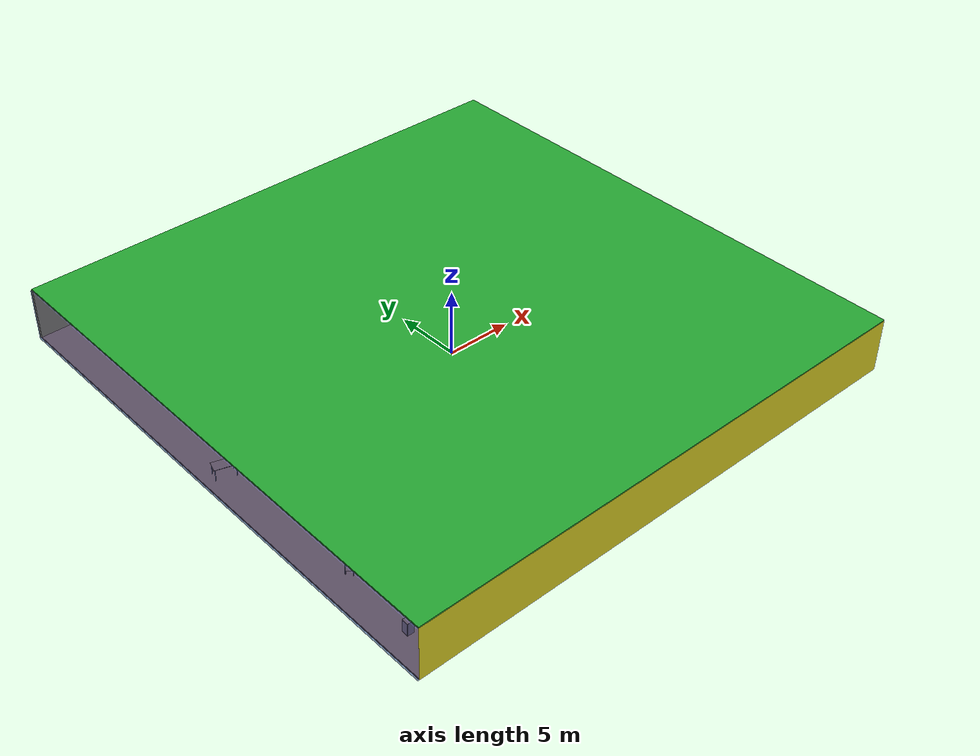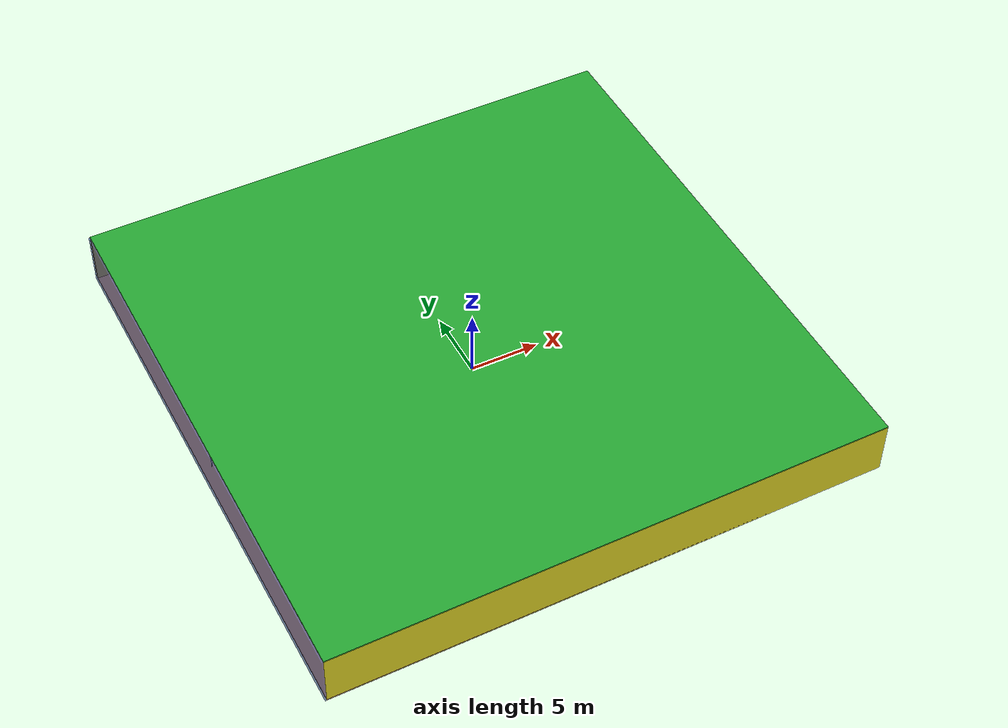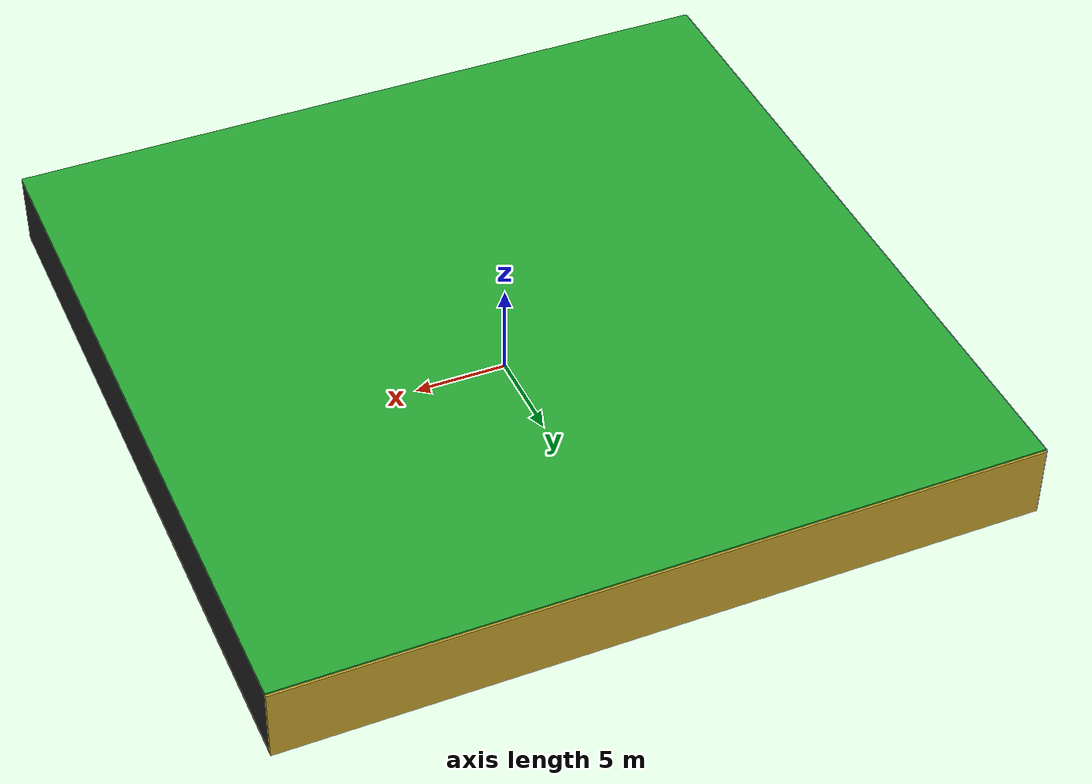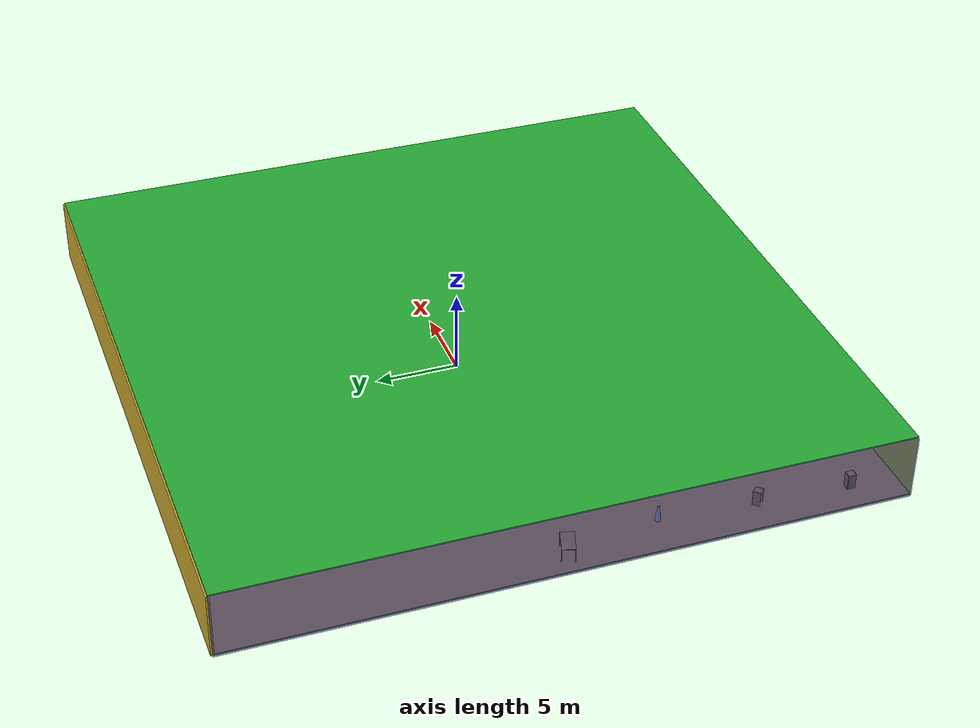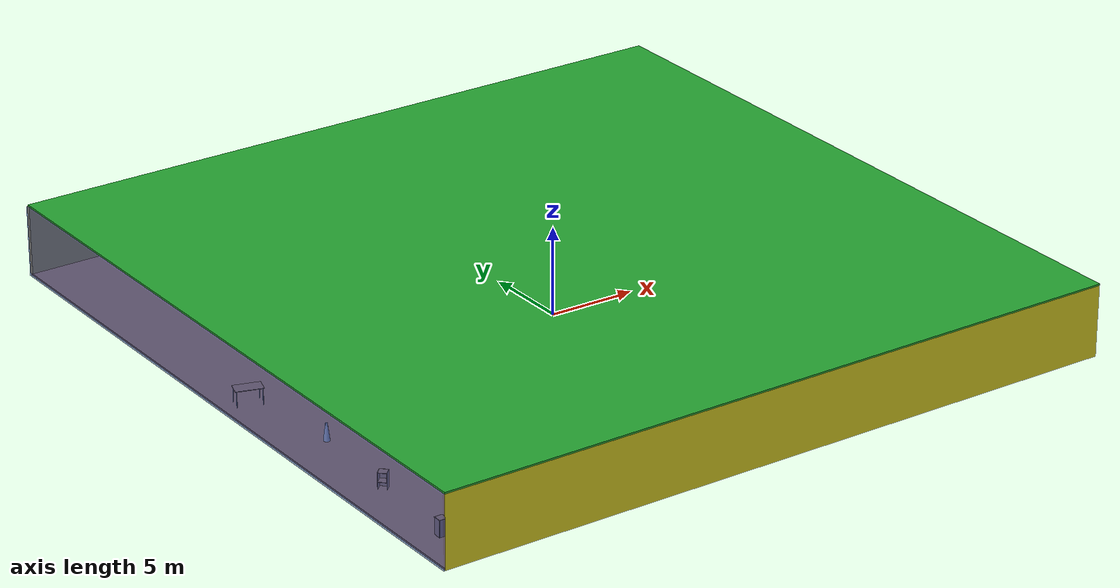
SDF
<sdf version="1.4">
 <world name="default">
  <physics type="ode">
   <max_step_size>0.001</max_step_size>
   <real_time_factor>1</real_time_factor>
   <real_time_update_rate>1000</real_time_update_rate>
   <gravity>0 0 -9.8</gravity>
  </physics>
  <scene><ambient>0.4 0.4 0.4 1</ambient><background>0.7 0.7 0.7 1</background><shadows>1</shadows></scene>
  <model name="Surrounding">
   <static>1</static>
   <link name="Ceiling">
    <collision name="Ceiling_Collision"><geometry><box><size>40 40 0.1</size></box></geometry></collision>
    <visual name="Ceiling_Visual">
     <geometry><box><size>40 40 0.1</size></box></geometry>
     <material>
      <script><uri>file://media/materials/scripts/gazebo.material</uri><name>Gazebo/Green</name></script>
     </material>
    </visual>
    <pose>0 0 4.05 0 0 0</pose>
   </link>
   <link name="Wall_South">
    <collision name="Wall_South_Collision">
     <geometry><box><size>40 0 4</size></box></geometry>
     <pose>0 0 2 0 -0 0</pose>
    </collision>
    <visual name="Wall_South_Visual">
     <pose>0 0 2 0 -0 0</pose>
     <geometry><box><size>40 0 4</size></box></geometry>
     <material>
      <script><uri>file://media/materials/scripts/gazebo.material</uri><name>Gazebo/YellowGlow</name></script>
     </material>
    </visual>
    <velocity_decay><linear>0</linear><angular>0</angular></velocity_decay>
    <pose>0 -20 0 0 -0 0</pose>
   </link>
   <link name="Wall_East">
    <collision name="Wall_21_Collision">
     <geometry><box><size>40 0 4</size></box></geometry>
     <pose>0 0 2 0 -0 0</pose>
    </collision>
    <visual name="Wall_21_Visual">
     <pose>0 0 2 0 -0 0</pose>
     <geometry><box><size>40 0 4</size></box></geometry>
     <material>
      <script><uri>file://media/materials/scripts/gazebo.material</uri><name>Gazebo/Black</name></script>
     </material>
    </visual>
    <velocity_decay><linear>0</linear><angular>0</angular></velocity_decay>
    <pose>20 0 0 0 -0 1.5708</pose>
   </link>
   <link name="Wall_North">
    <collision name="Wall_22_Collision">
     <geometry><box><size>40 0.2 4</size></box></geometry>
     <pose>0 0 2 0 -0 0</pose>
    </collision>
    <visual name="Wall_22_Visual">
     <pose>0 0 2 0 -0 0</pose>
     <geometry><box><size>40 0.2 4</size></box></geometry>
     <material>
      <script><uri>file://media/materials/scripts/gazebo.material</uri><name>Gazebo/Gold</name></script>
     </material>
    </visual>
    <velocity_decay><linear>0</linear><angular>0</angular></velocity_decay>
    <pose>0 20 0 0 -0 0</pose>
   </link>
   <link name="Wall_West">
    <collision name="Wall_23_Collision">
     <geometry><box><size>40 0.2 4</size></box></geometry>
     <pose>0 0 2 0 -0 0</pose>
    </collision>
    <visual name="Wall_23_Visual">
     <pose>0 0 2 0 -0 0</pose>
     <geometry><box><size>40 0.2 4</size></box></geometry>
     <material>
      <script><uri>file://media/materials/scripts/gazebo.material</uri><name>Gazebo/BlueTransparent</name></script>
     </material>
    </visual>
    <velocity_decay><linear>0</linear><angular>0</angular></velocity_decay>
    <pose>-20 0 0 0 0 -1.5708</pose>
   </link>
   <link name="Ground_link">
    <collision name="collision">
     <pose>0 0 .05 0 -0 0</pose>
     <geometry><box><size>40 40 0.1</size></box></geometry>
    </collision>
    <visual name="visual">
     <pose>0 0 .05 0 -0 0</pose>
     <geometry><box><size>40 40 0.1</size></box></geometry>
     <material>
      <script><uri>file://media/materials/scripts/gazebo.material</uri><name>Gazebo/WoodPallet</name></script>
     </material>
    </visual>
   </link>
   <static>1</static>
  </model>
  <spherical_coordinates>
   <surface_model>EARTH_WGS84</surface_model>
   <latitude_deg>0</latitude_deg>
   <longitude_deg>0</longitude_deg>
   <elevation>0</elevation>
   <heading_deg>0</heading_deg>
  </spherical_coordinates>
  <light name="lightball_0" type="diffuse">
   <diffuse>0.8 0.8 0.8 1</diffuse>
   <specular>0.2 0.2 0.2 1</specular>
   <attenuation>
    <range>100</range>
    <constant>0.7</constant>
    <linear>0.01</linear>
    <quadratic>0.001</quadratic>
   </attenuation>
   <direction>-0.5 0.1 -0.9</direction>
   <pose>-18.7052450067 -3.81508475378 2.51884599764 0 0 0</pose>
  </light>
  <light name="lightball_1" type="diffuse">
   <diffuse>0.8 0.8 0.8 1</diffuse>
   <specular>0.2 0.2 0.2 1</specular>
   <attenuation>
    <range>100</range>
    <constant>0.7</constant>
    <linear>0.01</linear>
    <quadratic>0.001</quadratic>
   </attenuation>
   <direction>-0.5 0.1 -0.9</direction>
   <pose>1.02097936259 -1.59358966553 0.808236473244 0 0 0</pose>
  </light>
  <light name="lightball_2" type="diffuse">
   <diffuse>0.8 0.8 0.8 1</diffuse>
   <specular>0.2 0.2 0.2 1</specular>
   <attenuation>
    <range>100</range>
    <constant>0.7</constant>
    <linear>0.01</linear>
    <quadratic>0.001</quadratic>
   </attenuation>
   <direction>-0.5 0.1 -0.9</direction>
   <pose>-13.4781375858 -6.66738241321 0.814625841236 0 0 0</pose>
  </light>
  <light name="lightball_3" type="diffuse">
   <diffuse>0.8 0.8 0.8 1</diffuse>
   <specular>0.2 0.2 0.2 1</specular>
   <attenuation>
    <range>100</range>
    <constant>0.7</constant>
    <linear>0.01</linear>
    <quadratic>0.001</quadratic>
   </attenuation>
   <direction>-0.5 0.1 -0.9</direction>
   <pose>-16.5935856653 -18.5657744378 2.03871000967 0 0 0</pose>
  </light>
  <light name="lightball_4" type="diffuse">
   <diffuse>0.8 0.8 0.8 1</diffuse>
   <specular>0.2 0.2 0.2 1</specular>
   <attenuation>
    <range>100</range>
    <constant>0.7</constant>
    <linear>0.01</linear>
    <quadratic>0.001</quadratic>
   </attenuation>
   <direction>-0.5 0.1 -0.9</direction>
   <pose>-6.71135238291 17.606329139 1.24895958908 0 0 0</pose>
  </light>
  <light name="lightball_5" type="diffuse">
   <diffuse>0.8 0.8 0.8 1</diffuse>
   <specular>0.2 0.2 0.2 1</specular>
   <attenuation>
    <range>100</range>
    <constant>0.7</constant>
    <linear>0.01</linear>
    <quadratic>0.001</quadratic>
   </attenuation>
   <direction>-0.5 0.1 -0.9</direction>
   <pose>-12.5333573843 1.22000375591 3.4760151334 0 0 0</pose>
  </light>
  <light name="lightball_6" type="diffuse">
   <diffuse>0.8 0.8 0.8 1</diffuse>
   <specular>0.2 0.2 0.2 1</specular>
   <attenuation>
    <range>100</range>
    <constant>0.7</constant>
    <linear>0.01</linear>
    <quadratic>0.001</quadratic>
   </attenuation>
   <direction>-0.5 0.1 -0.9</direction>
   <pose>15.4095882363 5.4469683955 2.06607301813 0 0 0</pose>
  </light>
  <light name="lightball_7" type="diffuse">
   <diffuse>0.8 0.8 0.8 1</diffuse>
   <specular>0.2 0.2 0.2 1</specular>
   <attenuation>
    <range>100</range>
    <constant>0.7</constant>
    <linear>0.01</linear>
    <quadratic>0.001</quadratic>
   </attenuation>
   <direction>-0.5 0.1 -0.9</direction>
   <pose>-10.241483196 9.94348161199 3.04343235878 0 0 0</pose>
  </light>
  <light name="lightball_8" type="diffuse">
   <diffuse>0.8 0.8 0.8 1</diffuse>
   <specular>0.2 0.2 0.2 1</specular>
   <attenuation>
    <range>100</range>
    <constant>0.7</constant>
    <linear>0.01</linear>
    <quadratic>0.001</quadratic>
   </attenuation>
   <direction>-0.5 0.1 -0.9</direction>
   <pose>-5.56862537667 4.8971006308 3.87472033542 0 0 0</pose>
  </light>
  <light name="lightball_9" type="diffuse">
   <diffuse>0.8 0.8 0.8 1</diffuse>
   <specular>0.2 0.2 0.2 1</specular>
   <attenuation>
    <range>100</range>
    <constant>0.7</constant>
    <linear>0.01</linear>
    <quadratic>0.001</quadratic>
   </attenuation>
   <direction>-0.5 0.1 -0.9</direction>
   <pose>11.2550977333 9.81795132963 2.85686029503 0 0 0</pose>
  </light>
  <include><uri>model://cabinet</uri><pose>-18.3113003323 -17.086158844 0 0 0 3.10477169357</pose></include>
  <include><uri>model://cabinet</uri><pose>-17.9853122617 -11.5399580199 0 0 0 0.781471046816</pose></include>
  <include>
   <uri>model://construction_cone</uri>
   <pose>-17.5364273264 -5.70282526782 0 0 0 2.15513341311</pose>
  </include>
  <include><uri>model://table</uri><pose>-18.559696563 0.0417429826056 0 0 0 2.84160872535</pose></include>
  <include><uri>model://table</uri><pose>-14.2505345373 -7.39328378857 0 0 0 1.45863549594</pose></include>
  <include><uri>model://cabinet</uri><pose>-14.6570603997 7.15730820273 0 0 0 0.395323680185</pose></include>
  <include><uri>model://cabinet</uri><pose>-12.0615761624 -9.2133528447 0 0 0 1.05024968028</pose></include>
  <include>
   <uri>model://textured_shapes</uri>
   <pose>-10.9541331024 10.4829542036 0 0 0 0.588024765376</pose>
  </include>
  <include><uri>model://table</uri><pose>-8.81054145702 -8.06036269915 0 0 0 0.227246258125</pose></include>
  <include><uri>model://cabinet</uri><pose>-9.29088817399 -2.88297189554 0 0 0 0.591880509264</pose></include>
  <include><uri>model://cabinet</uri><pose>-8.93442134575 0.0050759282923 0 0 0 1.39176791612</pose></include>
  <include><uri>model://cabinet</uri><pose>-5.93779059339 -17.258032745 0 0 0 1.61745072514</pose></include>
  <include><uri>model://cabinet</uri><pose>-6.60956049224 0.715457475863 0 0 0 1.95881209471</pose></include>
  <include><uri>model://cabinet</uri><pose>-4.50142847632 2.7061719769 0 0 0 0.527787535104</pose></include>
  <include>
   <uri>model://robocup_3Dsim_goal</uri>
   <pose>-1.68835408437 7.20116448361 0 0 0 2.38186623908</pose>
  </include>
  <include><uri>model://cabinet</uri><pose>0.34368845877 -15.3722436826 0 0 0 0.821505035454</pose></include>
  <include>
   <uri>model://construction_cone</uri>
   <pose>-0.0210990405115 -1.50291548691 0 0 0 0.962922805881</pose>
  </include>
  <include>
   <uri>model://textured_shapes</uri>
   <pose>-0.482773692253 1.51194588305 0 0 0 2.81891343295</pose>
  </include>
  <include><uri>model://cabinet</uri><pose>4.58619857028 -16.5145068931 0 0 0 1.03529073335</pose></include>
  <include>
   <uri>model://construction_cone</uri>
   <pose>4.60040841637 -15.4072263898 0 0 0 0.918172976973</pose>
  </include>
  <include><uri>model://table</uri><pose>2.69234178675 10.6644592901 0 0 0 0.00820051764724</pose></include>
  <include>
   <uri>model://construction_cone</uri>
   <pose>8.31264495367 17.909013046 0 0 0 0.109971966546</pose>
  </include>
  <include><uri>model://cabinet</uri><pose>13.5160362783 7.66438349358 0 0 0 0.53528421257</pose></include>
  <include><uri>model://cabinet</uri><pose>16.0959036199 -5.52240341404 0 0 0 1.72666877739</pose></include>
  <include><uri>model://cabinet</uri><pose>14.6407639663 4.09069498448 0 0 0 1.46258321976</pose></include>
 </world>
</sdf>

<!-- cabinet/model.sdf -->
<sdf version="1.5">
  <model name="cabinet">
    <static>true</static>
    <link name="cabinet_bottom_plate">
      <inertial>
        <pose>0 0 -1 0 0 0</pose>
        <inertia>
          <ixx>2.050000</ixx>
          <ixy>0</ixy>
          <ixz>0</ixz>
          <iyy>2.050000</iyy>
          <iyz>0</iyz>
          <izz>2.050000</izz>
        </inertia>
        <mass>25.000000</mass>
      </inertial>
      <collision name="cabinet_bottom_plate_geom">
        <pose>0 0 0.010000 0 0 0</pose>
        <geometry>
          <box>
            <size>0.450000 0.450000 0.020000</size>
          </box>
        </geometry>
      </collision>
      <visual name="cabinet_bottom_plate_geom_visual">
        <pose>0 0 0.010000 0 0 0</pose>
        <geometry>
          <box>
            <size>0.450000 0.450000 0.020000</size>
          </box>
        </geometry>
        <material>
          <script>
            <uri>model://media/materials/scripts/gazebo.material</uri>
            <name>Gazebo/Wood</name>
          </script>
        </material>
      </visual>
      <collision name="cabinet_bottom_plate_geom_cabinet_back_plate">
        <pose>0.235000 0 0.510000 0 0 0</pose>
        <geometry>
          <box>
            <size>0.020000 0.450000 1.020000</size>
          </box>
        </geometry>
      </collision>
      <visual name="cabinet_bottom_plate_geom_cabinet_back_plate_visual">
        <pose>0.235000 0 0.510000 0 0 0</pose>
        <geometry>
          <box>
            <size>0.020000 0.450000 1.020000</size>
          </box>
        </geometry>
        <material>
          <script>
            <uri>model://media/materials/scripts/gazebo.material</uri>
            <name>Gazebo/Wood</name>
          </script>
        </material>
      </visual>
      <collision name="cabinet_bottom_plate_geom_cabinet_left_plate">
        <pose>0 0.235000 0.510000 0 0 0</pose>
        <geometry>
          <box>
            <size>0.450000 0.020000 1.020000</size>
          </box>
        </geometry>
      </collision>
      <visual name="cabinet_bottom_plate_geom_cabinet_left_plate_visual">
        <pose>0 0.235000 0.510000 0 0 0</pose>
        <geometry>
          <box>
            <size>0.450000 0.020000 1.020000</size>
          </box>
        </geometry>
        <material>
          <script>
            <uri>model://media/materials/scripts/gazebo.material</uri>
            <name>Gazebo/Wood</name>
          </script>
        </material>
      </visual>
      <collision name="cabinet_bottom_plate_geom_cabinet_middle_plate">
        <pose>0 0 0.510000 0 0 0</pose>
        <geometry>
          <box>
            <size>0.450000 0.450000 0.020000</size>
          </box>
        </geometry>
      </collision>
      <visual name="cabinet_bottom_plate_geom_cabinet_middle_plate_visual">
        <pose>0 0 0.510000 0 0 0</pose>
        <geometry>
          <box>
            <size>0.450000 0.450000 0.020000</size>
          </box>
        </geometry>
        <material>
          <script>
            <uri>model://media/materials/scripts/gazebo.material</uri>
            <name>Gazebo/Wood</name>
          </script>
        </material>
      </visual>
      <collision name="cabinet_bottom_plate_geom_cabinet_right_plate">
        <pose>0 -0.235000 0.510000 0 0 0</pose>
        <geometry>
          <box>
            <size>0.450000 0.020000 1.020000</size>
          </box>
        </geometry>
      </collision>
      <visual name="cabinet_bottom_plate_geom_cabinet_right_plate_visual">
        <pose>0 -0.235000 0.510000 0 0 0</pose>
        <geometry>
          <box>
            <size>0.450000 0.020000 1.020000</size>
          </box>
        </geometry>
        <material>
          <script>
            <uri>model://media/materials/scripts/gazebo.material</uri>
            <name>Gazebo/Wood</name>
          </script>
        </material>
      </visual>
      <collision name="cabinet_bottom_plate_geom_cabinet_top_plate">
        <pose>0 0 1.010000 0 0 0</pose>
        <geometry>
          <box>
            <size>0.450000 0.450000 0.020000</size>
          </box>
        </geometry>
      </collision>
      <visual name="cabinet_bottom_plate_geom_cabinet_top_plate_visual">
        <pose>0 0 1.010000 0 0 0</pose>
        <geometry>
          <box>
            <size>0.450000 0.450000 0.020000</size>
          </box>
        </geometry>
        <material>
          <script>
            <uri>model://media/materials/scripts/gazebo.material</uri>
            <name>Gazebo/Wood</name>
          </script>
        </material>
      </visual>
    </link>
  </model>
</sdf>

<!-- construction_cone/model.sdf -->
<sdf version="1.5">
  <model name="Construction Cone">
    <link name="link">
      <collision name="collision">
        <geometry>
          <mesh>
            <scale>10 10 10</scale>
            <uri>file://isr-testbed/construction_cone/meshes/construction_cone.dae</uri>
          </mesh>
        </geometry>
      </collision>
      <visual name="visual">
        <geometry>
          <mesh>
            <scale>10 10 10</scale>
            <uri>file://isr-testbed/construction_cone/meshes/construction_cone.dae</uri>
          </mesh>
        </geometry>
      </visual>
    </link>
  </model>
</sdf>

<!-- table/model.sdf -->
<sdf version="1.5">
  <model name="table">
    <static>true</static>
    <link name="link">
      <collision name="surface">
        <pose>0 0 1.0 0 0 0</pose>
        <geometry>
          <box>
            <size>1.5 0.8 0.03</size>
          </box>
        </geometry>
        <surface>
          <friction>
            <ode>
              <mu>0.6</mu>
              <mu2>0.6</mu2>
            </ode>
          </friction>
        </surface>
      </collision>
      <visual name="visual1">
        <pose>0 0 1.0 0 0 0</pose>
        <geometry>
          <box>
            <size>1.5 0.8 0.03</size>
          </box>
        </geometry>
        <material>
          <script>
            <uri>model://media/materials/scripts/gazebo.material</uri>
            <name>Gazebo/Wood</name>
          </script>
        </material>
      </visual>
      <collision name="front_left_leg">
        <pose>0.68 0.38 0.5 0 0 0</pose>
        <geometry>
          <cylinder>
            <radius>0.02</radius>
            <length>1.0</length>
          </cylinder>
        </geometry>
      </collision>
      <visual name="front_left_leg">
        <pose>0.68 0.38 0.5 0 0 0</pose>
        <geometry>
          <cylinder>
            <radius>0.02</radius>
            <length>1.0</length>
          </cylinder>
        </geometry>
        <material>
          <script>
            <uri>model://media/materials/scripts/gazebo.material</uri>
            <name>Gazebo/Grey</name>
          </script>
        </material>
      </visual>
      <collision name="front_right_leg">
        <pose>0.68 -0.38 0.5 0 0 0</pose>
        <geometry>
          <cylinder>
            <radius>0.02</radius>
            <length>1.0</length>
          </cylinder>
        </geometry>
      </collision>
      <visual name="front_right_leg">
        <pose>0.68 -0.38 0.5 0 0 0</pose>
        <geometry>
          <cylinder>
            <radius>0.02</radius>
            <length>1.0</length>
          </cylinder>
        </geometry>
        <material>
          <script>
            <uri>model://media/materials/scripts/gazebo.material</uri>
            <name>Gazebo/Grey</name>
          </script>
        </material>
      </visual>
      <collision name="back_right_leg">
        <pose>-0.68 -0.38 0.5 0 0 0</pose>
        <geometry>
          <cylinder>
            <radius>0.02</radius>
            <length>1.0</length>
          </cylinder>
        </geometry>
      </collision>
      <visual name="back_right_leg">
        <pose>-0.68 -0.38 0.5 0 0 0</pose>
        <geometry>
          <cylinder>
            <radius>0.02</radius>
            <length>1.0</length>
          </cylinder>
        </geometry>
        <material>
          <script>
            <uri>model://media/materials/scripts/gazebo.material</uri>
            <name>Gazebo/Grey</name>
          </script>
        </material>
      </visual>
      <collision name="back_left_leg">
        <pose>-0.68 0.38 0.5 0 0 0</pose>
        <geometry>
          <cylinder>
            <radius>0.02</radius>
            <length>1.0</length>
          </cylinder>
        </geometry>
      </collision>
      <visual name="back_left_leg">
        <pose>-0.68 0.38 0.5 0 0 0</pose>
        <geometry>
          <cylinder>
            <radius>0.02</radius>
            <length>1.0</length>
          </cylinder>
        </geometry>
        <material>
          <script>
            <uri>model://media/materials/scripts/gazebo.material</uri>
            <name>Gazebo/Grey</name>
          </script>
        </material>
      </visual>
    </link>
  </model>
</sdf>

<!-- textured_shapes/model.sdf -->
<sdf version="1.6">
  <model name="textured_shapes">
    <pose>0 0 0.5 0 0 0</pose>
    <link name="box">
      <pose>0 -1.5 0 0 0 0</pose>
      <collision name="collision">
        <geometry>
          <box>
            <size>1 1 1</size>
          </box>
        </geometry>
      </collision>
      <visual name="visual">
        <geometry>
          <box>
            <size>1 1 1</size>
          </box>
        </geometry>
        <material>
          <script>
            <uri>model://../model_source/models/textured_shapes/materials/scripts</uri>
            <uri>model://../model_source/models/textured_shapes/materials/textures</uri>
            <name>TexturedShape/Squares</name>
          </script>
        </material>
      </visual>
    </link>
    <link name="sphere">
      <collision name="collision">
        <geometry>
          <sphere>
            <radius>0.5</radius>
          </sphere>
        </geometry>
      </collision>
      <visual name="visual">
        <geometry>
          <sphere>
            <radius>0.5</radius>
          </sphere>
        </geometry>
        <material>
          <script>
            <uri>model://../model_source/models/textured_shapes/materials/scripts</uri>
            <uri>model://../model_source/models/textured_shapes/materials/textures</uri>
            <name>TexturedShape/Squares</name>
          </script>
        </material>
      </visual>
    </link>
    <link name="cylinder">
      <pose>0 1.5 0 0 0 0</pose>
      <collision name="collision">
        <geometry>
          <cylinder>
            <radius>0.5</radius>
            <length>1</length>
          </cylinder>
        </geometry>
      </collision>
      <visual name="visual">
        <geometry>
          <cylinder>
            <radius>0.5</radius>
            <length>1</length>
          </cylinder>
        </geometry>
        <material>
          <script>
            <uri>model://../model_source/models/textured_shapes/materials/scripts</uri>
            <uri>model://../model_source/models/textured_shapes/materials/textures</uri>
            <name>TexturedShape/Squares</name>
          </script>
        </material>
      </visual>
    </link>
  </model>
</sdf>

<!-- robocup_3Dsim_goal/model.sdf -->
<sdf version="1.5">
  <model name="robocup_3d_goal">
    <static>true</static>
    <link name="left_post">
      <pose>0 1.05 0.45 0 0 0</pose>
      <collision name="collision">
        <geometry>
          <cylinder>
            <radius>0.05</radius>
            <length>0.9</length>
          </cylinder>
        </geometry>
      </collision>
      <visual name="visual">
        <geometry>
          <cylinder>
            <radius>0.05</radius>
            <length>0.9</length>
          </cylinder>
        </geometry>
        <material>
          <script>
            <uri>file://media/materials/scripts/gazebo.material</uri>
            <name>Gazebo/ZincYellow</name>
          </script>
        </material>
      </visual>
    </link>
    <link name="left_support_horiz_lower">
      <pose>0.30 1.05 0.01 0 0 0</pose>
      <collision name="collision">
        <geometry>
          <box>
            <size>0.50 0.02 0.02</size>
          </box>
        </geometry>
      </collision>
      <visual name="visual">
        <geometry>
          <box>
            <size>0.50 0.02 0.02</size>
          </box>
        </geometry>
        <material>
          <script>
            <uri>file://media/materials/scripts/gazebo.material</uri>
            <name>Gazebo/White</name>
          </script>
        </material>
      </visual>
    </link>
    <link name="left_support_horiz_upper">
      <pose>0.30 1.05 0.79 0 0 0</pose>
      <collision name="collision">
        <geometry>
          <box>
            <size>0.50 0.02 0.02</size>
          </box>
        </geometry>
      </collision>
      <visual name="visual">
        <geometry>
          <box>
            <size>0.50 0.02 0.02</size>
          </box>
        </geometry>
        <material>
          <script>
            <uri>file://media/materials/scripts/gazebo.material</uri>
            <name>Gazebo/White</name>
          </script>
        </material>
      </visual>
    </link>
    <link name="left_support_vertical">
      <pose>0.56 1.05 0.4 0 1.5708 0</pose>
      <collision name="collision">
        <geometry>
          <box>
            <size>0.80 0.02 0.02</size>
          </box>
        </geometry>
      </collision>
      <visual name="visual">
        <geometry>
          <box>
            <size>0.80 0.02 0.02</size>
          </box>
        </geometry>
        <material>
          <script>
            <uri>file://media/materials/scripts/gazebo.material</uri>
            <name>Gazebo/White</name>
          </script>
        </material>
      </visual>
    </link>
    <link name="right_support_horiz_lower">
      <pose>0.30 -1.05 0.01 0 0 0</pose>
      <collision name="collision">
        <geometry>
          <box>
            <size>0.50 0.02 0.02</size>
          </box>
        </geometry>
      </collision>
      <visual name="visual">
        <geometry>
          <box>
            <size>0.50 0.02 0.02</size>
          </box>
        </geometry>
        <material>
          <script>
            <uri>file://media/materials/scripts/gazebo.material</uri>
            <name>Gazebo/White</name>
          </script>
        </material>
      </visual>
    </link>
    <link name="right_support_horiz_upper">
      <pose>0.30 -1.05 0.79 0 0 0</pose>
      <collision name="collision">
        <geometry>
          <box>
            <size>0.50 0.02 0.02</size>
          </box>
        </geometry>
      </collision>
      <visual name="visual">
        <geometry>
          <box>
            <size>0.50 0.02 0.02</size>
          </box>
        </geometry>
        <material>
          <script>
            <uri>file://media/materials/scripts/gazebo.material</uri>
            <name>Gazebo/White</name>
          </script>
        </material>
      </visual>
    </link>
    <link name="right_support_vertical">
      <pose>0.56 -1.05 0.4 0 1.5708 0</pose>
      <collision name="collision">
        <geometry>
          <box>
            <size>0.80 0.02 0.02</size>
          </box>
        </geometry>
      </collision>
      <visual name="visual">
        <geometry>
          <box>
            <size>0.80 0.02 0.02</size>
          </box>
        </geometry>
        <material>
          <script>
            <uri>file://media/materials/scripts/gazebo.material</uri>
            <name>Gazebo/White</name>
          </script>
        </material>
      </visual>
    </link>
    <link name="center_support_horiz_lower">
      <pose>0.56 0 0.01 0 1.5708 0</pose>
      <collision name="collision">
        <geometry>
          <box>
            <size>0.02 2.08 0.02</size>
          </box>
        </geometry>
      </collision>
      <visual name="visual">
        <geometry>
          <box>
            <size>0.02 2.08 0.02</size>
          </box>
        </geometry>
        <material>
          <script>
            <uri>file://media/materials/scripts/gazebo.material</uri>
            <name>Gazebo/White</name>
          </script>
        </material>
      </visual>
    </link>
    <link name="center_support_horiz_upper">
      <pose>0.56 0 0.79 0 1.5708 0</pose>
      <collision name="collision">
        <geometry>
          <box>
            <size>0.02 2.08 0.02</size>
          </box>
        </geometry>
      </collision>
      <visual name="visual">
        <geometry>
          <box>
            <size>0.02 2.08 0.02</size>
          </box>
        </geometry>
        <material>
          <script>
            <uri>file://media/materials/scripts/gazebo.material</uri>
            <name>Gazebo/White</name>
          </script>
        </material>
      </visual>
    </link>
    <link name="right_post">
      <pose>0 -1.05 0.45 0 0 0</pose>
      <collision name="collision">
        <geometry>
          <cylinder>
            <radius>0.05</radius>
            <length>0.9</length>
          </cylinder>
        </geometry>
      </collision>
      <visual name="visual">
        <geometry>
          <cylinder>
            <radius>0.05</radius>
            <length>0.9</length>
          </cylinder>
        </geometry>
        <material>
          <script>
            <uri>file://media/materials/scripts/gazebo.material</uri>
            <name>Gazebo/ZincYellow</name>
          </script>
        </material>
      </visual>
    </link>
    <link name="crossbar">
      <pose>0 0 0.85 1.57 1.57 0</pose>
      <collision name="collision">
        <geometry>
          <cylinder>
            <radius>0.05</radius>
            <length>2.0</length>
          </cylinder>
        </geometry>
      </collision>
      <visual name="visual">
        <geometry>
          <cylinder>
            <radius>0.05</radius>
            <length>2.0</length>
          </cylinder>
        </geometry>
        <material>
          <script>
            <uri>file://media/materials/scripts/gazebo.material</uri>
            <name>Gazebo/ZincYellow</name>
          </script>
        </material>
      </visual>
    </link>
    <link name="center_net">
      <pose>0.56 0 0.40 0 0 0</pose>
      <collision name="collision">
        <geometry>
          <box>
            <size>0.01 2.1 0.80</size>
          </box>
        </geometry>
      </collision>
      <visual name="visual">
        <geometry>
          <box>
            <size>0.01 2.1 0.80</size>
          </box>
        </geometry>
        <material>
          <script>
            <uri>model://../model_source/models/robocup09_spl_field/materials/scripts/</uri>
            <uri>model://../model_source/models/robocup09_spl_field/materials/textures/</uri>
            <name>RoboCup/Net</name>
          </script>
        </material>
      </visual>
    </link>
    <link name="left_net">
      <pose>0.30 1.05 0.40 0 0 0</pose>
      <collision name="collision">
        <geometry>
          <box>
            <size>0.50 0.01 0.76</size>
          </box>
        </geometry>
      </collision>
      <visual name="visual">
        <geometry>
          <box>
            <size>0.50 0.01 0.76</size>
          </box>
        </geometry>
        <material>
          <script>
            <uri>model://../model_source/models/robocup09_spl_field/materials/scripts/</uri>
            <uri>model://../model_source/models/robocup09_spl_field/materials/textures/</uri>
            <name>RoboCup/Net</name>
          </script>
        </material>
      </visual>
    </link>
    <link name="right_net">
      <pose>0.30 -1.05 0.40 0 0 0</pose>
      <collision name="collision">
        <geometry>
          <box>
            <size>0.50 0.01 0.76</size>
          </box>
        </geometry>
      </collision>
      <visual name="visual">
        <geometry>
          <box>
            <size>0.50 0.01 0.76</size>
          </box>
        </geometry>
        <material>
          <script>
            <uri>model://../model_source/models/robocup09_spl_field/materials/scripts/</uri>
            <uri>model://../model_source/models/robocup09_spl_field/materials/textures/</uri>
            <name>RoboCup/Net</name>
          </script>
        </material>
      </visual>
    </link>
  </model>
</sdf>
